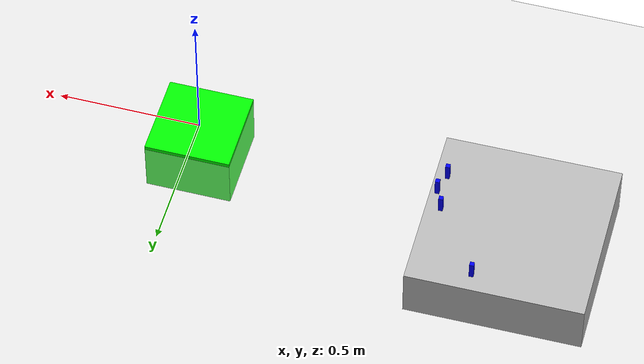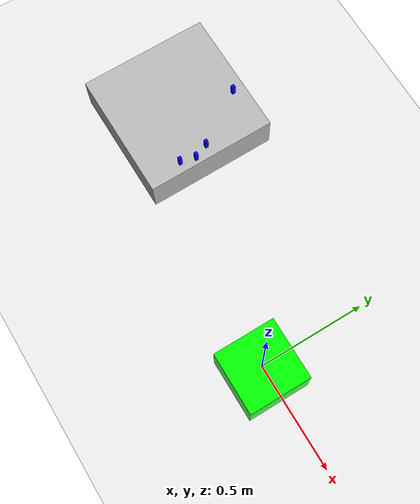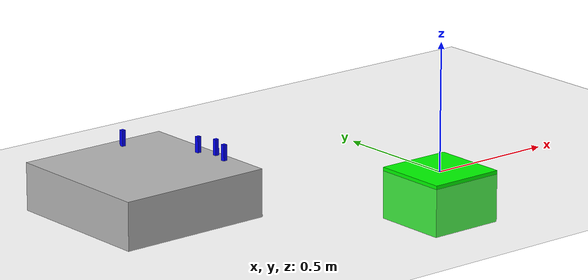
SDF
<sdf version="1.7">
 <world name="default">
  <model name="ground_plane">
   <static>1</static>
   <link name="link">
    <collision name="collision">
     <geometry><plane><normal>0 0 1</normal><size>100 100</size></plane></geometry>
     <surface>
      <contact><collide_bitmask>65535</collide_bitmask></contact>
      <friction><ode><mu>100</mu><mu2>50</mu2></ode></friction>
     </surface>
    </collision>
    <visual name="visual">
     <cast_shadows>0</cast_shadows>
     <geometry><plane><normal>0 0 1</normal><size>100 100</size></plane></geometry>
     <material>
      <script><uri>file://media/materials/scripts/gazebo.material</uri><name>Gazebo/Grey</name></script>
     </material>
    </visual>
   </link>
  </model>
  <model name="unit_box_SMALL">
   <pose>-1.16745 0.27779 0.1005 0 -0 0.007743</pose>
   <link name="link">
    <inertial>
     <mass>1</mass>
     <inertia>
      <ixx>1.56e-06</ixx>
      <ixy>0</ixy>
      <ixz>0</ixz>
      <iyy>1.56e-06</iyy>
      <iyz>0</iyz>
      <izz>1.2e-07</izz>
     </inertia>
    </inertial>
    <collision name="collision"><geometry><box><size>0.6 0.6 0.18</size></box></geometry></collision>
    <visual name="visual">
     <geometry><box><size>0.6 0.6 0.18</size></box></geometry>
     <material>
      <script>
       <uri>model://side_table_1/materials/scripts</uri>
       <uri>model://side_table_1/materials/textures</uri>
       <name>side_table_1</name>
      </script>
     </material>
    </visual>
   </link>
   <static>1</static>
  </model>
  <model name="box_b">
   <pose>-0.908225 0.143712 0.2205 -1.2e-05 4e-05 0.01371</pose>
   <link name="link">
    <inertial>
     <mass>0.005</mass>
     <inertia>
      <ixx>1.56e-06</ixx>
      <ixy>0</ixy>
      <ixz>0</ixz>
      <iyy>1.56e-06</iyy>
      <iyz>0</iyz>
      <izz>1.2e-07</izz>
     </inertia>
    </inertial>
    <collision name="collision">
     <geometry><box><size>0.015 0.015 0.06</size></box></geometry>
     <surface><friction><mu>0.1</mu><mu2>0.1</mu2><slip1>0.1</slip1><slip2>0.1</slip2></friction></surface>
    </collision>
    <visual name="visual">
     <geometry><box><size>0.015 0.015 0.06</size></box></geometry>
     <material>
      <script><name>Gazebo/Grey</name><uri>file://media/materials/scripts/gazebo.material</uri></script>
      <ambient>0 0 1 1</ambient>
      <diffuse>0 0 1 1</diffuse>
      <specular>0 0 0 1</specular>
      <emissive>0 0 0 1</emissive>
     </material>
    </visual>
   </link>
  </model>
  <model name="box_b_clone">
   <pose>-0.890533 0.213818 0.220499 -3.1e-05 -4e-05 0.013055</pose>
   <link name="link">
    <inertial>
     <mass>0.005</mass>
     <inertia>
      <ixx>1.56e-06</ixx>
      <ixy>0</ixy>
      <ixz>0</ixz>
      <iyy>1.56e-06</iyy>
      <iyz>0</iyz>
      <izz>1.2e-07</izz>
     </inertia>
    </inertial>
    <collision name="collision"><geometry><box><size>0.015 0.015 0.06</size></box></geometry></collision>
    <visual name="visual">
     <geometry><box><size>0.015 0.015 0.06</size></box></geometry>
     <material>
      <script><name>Gazebo/Grey</name><uri>file://media/materials/scripts/gazebo.material</uri></script>
      <ambient>0 0 1 1</ambient>
      <diffuse>0 0 1 1</diffuse>
      <specular>0 0 0 1</specular>
      <emissive>0 0 0 1</emissive>
     </material>
    </visual>
   </link>
  </model>
  <model name="box_b_clone_0">
   <pose>-0.918999 0.280884 0.2205 -4.9e-05 5e-06 0.01422</pose>
   <link name="link">
    <inertial>
     <mass>0.005</mass>
     <inertia>
      <ixx>1.56e-06</ixx>
      <ixy>0</ixy>
      <ixz>0</ixz>
      <iyy>1.56e-06</iyy>
      <iyz>0</iyz>
      <izz>1.2e-07</izz>
     </inertia>
    </inertial>
    <collision name="collision"><geometry><box><size>0.015 0.015 0.06</size></box></geometry></collision>
    <visual name="visual">
     <geometry><box><size>0.015 0.015 0.06</size></box></geometry>
     <material>
      <script><name>Gazebo/Grey</name><uri>file://media/materials/scripts/gazebo.material</uri></script>
      <ambient>0 0 1 1</ambient>
      <diffuse>0 0 1 1</diffuse>
      <specular>0 0 0 1</specular>
      <emissive>0 0 0 1</emissive>
     </material>
    </visual>
   </link>
  </model>
  <model name="box_b_clone_1">
   <pose>-1.08156 0.517974 0.2205 2.6e-05 2.9e-05 0.015221</pose>
   <link name="link">
    <inertial>
     <mass>0.005</mass>
     <inertia>
      <ixx>1.56e-06</ixx>
      <ixy>0</ixy>
      <ixz>0</ixz>
      <iyy>1.56e-06</iyy>
      <iyz>0</iyz>
      <izz>1.2e-07</izz>
     </inertia>
    </inertial>
    <collision name="collision"><geometry><box><size>0.015 0.015 0.06</size></box></geometry></collision>
    <visual name="visual">
     <geometry><box><size>0.015 0.015 0.06</size></box></geometry>
     <material>
      <script><name>Gazebo/Grey</name><uri>file://media/materials/scripts/gazebo.material</uri></script>
      <ambient>0 0 1 1</ambient>
      <diffuse>0 0 1 1</diffuse>
      <specular>0 0 0 1</specular>
      <emissive>0 0 0 1</emissive>
     </material>
    </visual>
   </link>
  </model>
  <model name="cube_g">
   <link name="link_2">
    <pose>0 0 0.1 0 -0 0</pose>
    <inertial>
     <mass>1</mass>
     <inertia>
      <ixx>0.166667</ixx>
      <ixy>0</ixy>
      <ixz>0</ixz>
      <iyy>0.166667</iyy>
      <iyz>0</iyz>
      <izz>0.166667</izz>
     </inertia>
    </inertial>
    <visual name="visual">
     <geometry><box><size>0.3 0.3 0.2</size></box></geometry>
     <material>
      <lighting>1</lighting>
      <script><uri>file://media/materials/scripts/gazebo.material</uri><name>Gazebo/Grey</name></script>
      <ambient>0 1 0 1</ambient>
      <diffuse>0 1 0 1</diffuse>
      <specular>0 0 0 1</specular>
      <emissive>0 0 0 1</emissive>
      <shader type="vertex"><normal_map>__default__</normal_map></shader>
     </material>
    </visual>
    <collision name="collision">
     <geometry><box><size>0.3 0.3 0.01</size></box></geometry>
     <surface>
      <friction>
       <ode><mu>1</mu><mu2>1</mu2><fdir1>0 0 0</fdir1><slip1>0</slip1><slip2>0</slip2></ode>
       <torsional>
        <coefficient>1</coefficient>
        <patch_radius>0</patch_radius>
        <surface_radius>0</surface_radius>
        <use_patch_radius>1</use_patch_radius>
        <ode><slip>0</slip></ode>
       </torsional>
      </friction>
      <bounce><restitution_coefficient>0</restitution_coefficient><threshold>1e+06</threshold></bounce>
      <contact>
       <collide_without_contact>0</collide_without_contact>
       <collide_without_contact_bitmask>1</collide_without_contact_bitmask>
       <collide_bitmask>1</collide_bitmask>
       <ode>
        <soft_cfm>0</soft_cfm>
        <soft_erp>0.2</soft_erp>
        <kp>1e+13</kp>
        <kd>1</kd>
        <max_vel>0.01</max_vel>
        <min_depth>0</min_depth>
       </ode>
       <bullet>
        <split_impulse>1</split_impulse>
        <split_impulse_penetration_threshold>-0.01</split_impulse_penetration_threshold>
        <soft_cfm>0</soft_cfm>
        <soft_erp>0.2</soft_erp>
        <kp>1e+13</kp>
        <kd>1</kd>
       </bullet>
      </contact>
     </surface>
    </collision>
   </link>
   <static>1</static>
   <pose>0 0 -0.187337 0 -0 0</pose>
  </model>
 </world>
</sdf>
